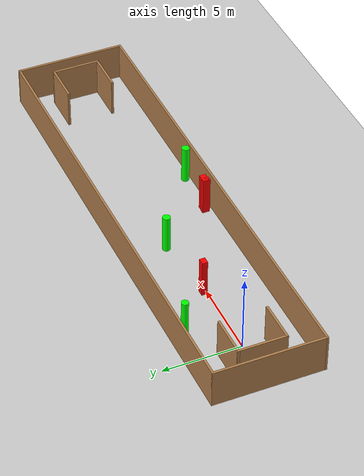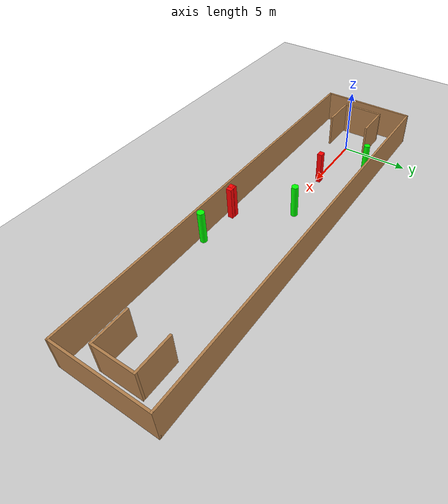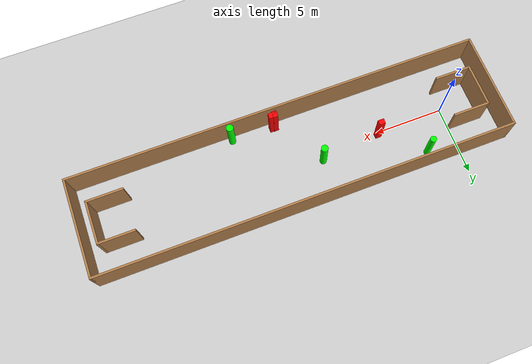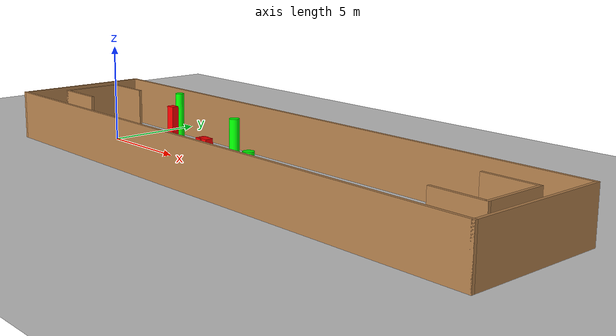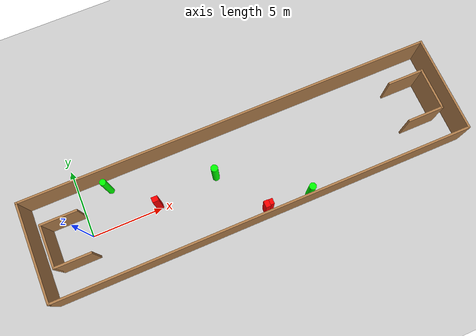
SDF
<sdf version="1.7">
 <world name="default">
  <light name="sun" type="directional">
   <pose>0 0 10 0 -0 0</pose>
   <diffuse>0.8 0.8 0.8 1</diffuse>
   <specular>0.2 0.2 0.2 1</specular>
   <attenuation>
    <range>1000</range>
    <constant>0.9</constant>
    <linear>0.01</linear>
    <quadratic>0.001</quadratic>
   </attenuation>
   <direction>-0.5 0.1 -0.9</direction>
   <spot><inner_angle>0</inner_angle><outer_angle>0</outer_angle><falloff>0</falloff></spot>
  </light>
  <model name="ground_plane">
   <static>1</static>
   <link name="link">
    <collision name="collision">
     <geometry><plane><normal>0 0 1</normal><size>100 100</size></plane></geometry>
     <surface>
      <contact><collide_bitmask>65535</collide_bitmask></contact>
      <friction><ode><mu>100</mu><mu2>50</mu2></ode></friction>
     </surface>
    </collision>
    <visual name="visual">
     <cast_shadows>0</cast_shadows>
     <geometry><plane><normal>0 0 1</normal><size>100 100</size></plane></geometry>
     <material>
      <script><uri>file://media/materials/scripts/gazebo.material</uri><name>Gazebo/Grey</name></script>
     </material>
    </visual>
   </link>
  </model>
  <gravity>0 0 -9.8</gravity>
  <magnetic_field>6e-06 2.3e-05 -4.2e-05</magnetic_field>
  <atmosphere type="adiabatic"/>
  <physics type="ode">
   <max_step_size>0.001</max_step_size>
   <real_time_factor>1</real_time_factor>
   <real_time_update_rate>1000</real_time_update_rate>
  </physics>
  <scene><ambient>0.4 0.4 0.4 1</ambient><background>0.7 0.7 0.7 1</background><shadows>1</shadows></scene>
  <spherical_coordinates>
   <surface_model>EARTH_WGS84</surface_model>
   <latitude_deg>0</latitude_deg>
   <longitude_deg>0</longitude_deg>
   <elevation>0</elevation>
   <heading_deg>0</heading_deg>
  </spherical_coordinates>
  <model name="my_base_walls">
   <link name="Wall_0">
    <collision name="Wall_0_Collision">
     <geometry><box><size>7.15 0.15 2.5</size></box></geometry>
     <pose>0 0 1.25 0 -0 0</pose>
    </collision>
    <visual name="Wall_0_Visual">
     <pose>0 0 1.25 0 -0 0</pose>
     <geometry><box><size>7.15 0.15 2.5</size></box></geometry>
     <material>
      <script><uri>file://media/materials/scripts/gazebo.material</uri><name>Gazebo/Wood</name></script>
      <ambient>1 1 1 1</ambient>
     </material>
     <meta><layer>0</layer></meta>
    </visual>
    <pose>-15 0 0 0 -0 1.5708</pose>
   </link>
   <link name="Wall_10">
    <collision name="Wall_10_Collision">
     <geometry><box><size>2.65 0.15 2.5</size></box></geometry>
     <pose>0 0 1.25 0 -0 0</pose>
    </collision>
    <visual name="Wall_10_Visual">
     <pose>0 0 1.25 0 -0 0</pose>
     <geometry><box><size>2.65 0.15 2.5</size></box></geometry>
     <material>
      <script><uri>file://media/materials/scripts/gazebo.material</uri><name>Gazebo/Wood</name></script>
      <ambient>1 1 1 1</ambient>
     </material>
     <meta><layer>0</layer></meta>
    </visual>
    <pose>-12.75 -1.5 0 0 -0 0</pose>
   </link>
   <link name="Wall_12">
    <collision name="Wall_12_Collision">
     <geometry><box><size>2.65 0.15 2.5</size></box></geometry>
     <pose>0 0 1.25 0 -0 0</pose>
    </collision>
    <visual name="Wall_12_Visual">
     <pose>0 0 1.25 0 -0 0</pose>
     <geometry><box><size>2.65 0.15 2.5</size></box></geometry>
     <material>
      <script><uri>file://media/materials/scripts/gazebo.material</uri><name>Gazebo/Wood</name></script>
      <ambient>1 1 1 1</ambient>
     </material>
     <meta><layer>0</layer></meta>
    </visual>
    <pose>-12.75 1.5 0 0 -0 0</pose>
   </link>
   <link name="Wall_14">
    <collision name="Wall_14_Collision">
     <geometry><box><size>3.15 0.15 2.5</size></box></geometry>
     <pose>0 0 1.25 0 -0 0</pose>
    </collision>
    <visual name="Wall_14_Visual">
     <pose>0 0 1.25 0 -0 0</pose>
     <geometry><box><size>3.15 0.15 2.5</size></box></geometry>
     <material>
      <script><uri>file://media/materials/scripts/gazebo.material</uri><name>Gazebo/Wood</name></script>
      <ambient>1 1 1 1</ambient>
     </material>
     <meta><layer>0</layer></meta>
    </visual>
    <pose>14 0 0 0 -0 -1.5708</pose>
   </link>
   <link name="Wall_15">
    <collision name="Wall_15_Collision">
     <geometry><box><size>2.65 0.15 2.5</size></box></geometry>
     <pose>0 0 1.25 0 -0 0</pose>
    </collision>
    <visual name="Wall_15_Visual">
     <pose>0 0 1.25 0 -0 0</pose>
     <geometry><box><size>2.65 0.15 2.5</size></box></geometry>
     <material>
      <script><uri>file://media/materials/scripts/gazebo.material</uri><name>Gazebo/Wood</name></script>
      <ambient>1 1 1 1</ambient>
     </material>
     <meta><layer>0</layer></meta>
    </visual>
    <pose>12.75 -1.5 0 0 -0 3.14159</pose>
   </link>
   <link name="Wall_17">
    <collision name="Wall_17_Collision">
     <geometry><box><size>2.65 0.15 2.5</size></box></geometry>
     <pose>0 0 1.25 0 -0 0</pose>
    </collision>
    <visual name="Wall_17_Visual">
     <pose>0 0 1.25 0 -0 0</pose>
     <geometry><box><size>2.65 0.15 2.5</size></box></geometry>
     <material>
      <script><uri>file://media/materials/scripts/gazebo.material</uri><name>Gazebo/Wood</name></script>
      <ambient>1 1 1 1</ambient>
     </material>
     <meta><layer>0</layer></meta>
    </visual>
    <pose>12.75 1.5 0 0 -0 3.14159</pose>
   </link>
   <link name="Wall_2">
    <collision name="Wall_2_Collision">
     <geometry><box><size>30.15 0.15 2.5</size></box></geometry>
     <pose>0 0 1.25 0 -0 0</pose>
    </collision>
    <visual name="Wall_2_Visual">
     <pose>0 0 1.25 0 -0 0</pose>
     <geometry><box><size>30.15 0.15 2.5</size></box></geometry>
     <material>
      <script><uri>file://media/materials/scripts/gazebo.material</uri><name>Gazebo/Wood</name></script>
      <ambient>1 1 1 1</ambient>
     </material>
     <meta><layer>0</layer></meta>
    </visual>
    <pose>-0 -3.5 0 0 -0 0</pose>
   </link>
   <link name="Wall_4">
    <collision name="Wall_4_Collision">
     <geometry><box><size>30.15 0.15 2.5</size></box></geometry>
     <pose>0 0 1.25 0 -0 0</pose>
    </collision>
    <visual name="Wall_4_Visual">
     <pose>0 0 1.25 0 -0 0</pose>
     <geometry><box><size>30.15 0.15 2.5</size></box></geometry>
     <material>
      <script><uri>file://media/materials/scripts/gazebo.material</uri><name>Gazebo/Wood</name></script>
      <ambient>1 1 1 1</ambient>
     </material>
     <meta><layer>0</layer></meta>
    </visual>
    <pose>-0 3.5 0 0 -0 0</pose>
   </link>
   <link name="Wall_6">
    <collision name="Wall_6_Collision">
     <geometry><box><size>7.15 0.15 2.5</size></box></geometry>
     <pose>0 0 1.25 0 -0 0</pose>
    </collision>
    <visual name="Wall_6_Visual">
     <pose>0 0 1.25 0 -0 0</pose>
     <geometry><box><size>7.15 0.15 2.5</size></box></geometry>
     <material>
      <script><uri>file://media/materials/scripts/gazebo.material</uri><name>Gazebo/Wood</name></script>
      <ambient>1 1 1 1</ambient>
     </material>
     <meta><layer>0</layer></meta>
    </visual>
    <pose>15 0 0 0 -0 -1.5708</pose>
   </link>
   <link name="Wall_9">
    <collision name="Wall_9_Collision">
     <geometry><box><size>3.15 0.15 2.5</size></box></geometry>
     <pose>0 0 1.25 0 -0 0</pose>
    </collision>
    <visual name="Wall_9_Visual">
     <pose>0 0 1.25 0 -0 0</pose>
     <geometry><box><size>3.15 0.15 2.5</size></box></geometry>
     <material>
      <script><uri>file://media/materials/scripts/gazebo.material</uri><name>Gazebo/Wood</name></script>
      <ambient>1 1 1 1</ambient>
     </material>
     <meta><layer>0</layer></meta>
    </visual>
    <pose>-14 0 0 0 -0 -1.5708</pose>
   </link>
   <static>1</static>
   <pose>11.5 0 0 0 -0 0</pose>
  </model>
  <model name="cylinder1">
   <static>1</static>
   <link name="link">
    <inertial>
     <mass>1</mass>
     <inertia><ixx>0.5</ixx><ixy>0</ixy><ixz>0</ixz><iyy>0.5</iyy><iyz>0</iyz><izz>1</izz></inertia>
    </inertial>
    <collision name="collision">
     <geometry><cylinder><radius>0.22545311920945393</radius><length>2.5</length></cylinder></geometry>
    </collision>
    <visual name="visual">
     <geometry><cylinder><radius>0.22545311920945393</radius><length>2.5</length></cylinder></geometry>
     <material>
      <ambient>0 1 0 1</ambient>
      <diffuse>0 1 0 1</diffuse>
      <specular>0.1 0.1 0.1 1</specular>
      <emissive>0 0 0 0</emissive>
     </material>
    </visual>
   </link>
   <pose>2.205723204349063 2.6143276908042683 1.25 0 0 0</pose>
  </model>
  <model name="cylinder2">
   <static>1</static>
   <link name="link">
    <inertial>
     <mass>1</mass>
     <inertia><ixx>0.5</ixx><ixy>0</ixy><ixz>0</ixz><iyy>0.5</iyy><iyz>0</iyz><izz>1</izz></inertia>
    </inertial>
    <collision name="collision">
     <geometry><cylinder><radius>0.25094059613452896</radius><length>2.5</length></cylinder></geometry>
    </collision>
    <visual name="visual">
     <geometry><cylinder><radius>0.25094059613452896</radius><length>2.5</length></cylinder></geometry>
     <material>
      <ambient>0 1 0 1</ambient>
      <diffuse>0 1 0 1</diffuse>
      <specular>0.1 0.1 0.1 1</specular>
      <emissive>0 0 0 0</emissive>
     </material>
    </visual>
   </link>
   <pose>9.3880855382277 0.6102997024967625 1.25 0 0 0</pose>
  </model>
  <model name="cylinder3">
   <static>1</static>
   <link name="link">
    <inertial>
     <mass>1</mass>
     <inertia><ixx>0.5</ixx><ixy>0</ixy><ixz>0</ixz><iyy>0.5</iyy><iyz>0</iyz><izz>1</izz></inertia>
    </inertial>
    <collision name="collision">
     <geometry><cylinder><radius>0.25122510627193095</radius><length>2.5</length></cylinder></geometry>
    </collision>
    <visual name="visual">
     <geometry><cylinder><radius>0.25122510627193095</radius><length>2.5</length></cylinder></geometry>
     <material>
      <ambient>0 1 0 1</ambient>
      <diffuse>0 1 0 1</diffuse>
      <specular>0.1 0.1 0.1 1</specular>
      <emissive>0 0 0 0</emissive>
     </material>
    </visual>
   </link>
   <pose>14.931494699605965 -3.096119892757287 1.25 0 0 0</pose>
  </model>
  <model name="box1">
   <static>1</static>
   <link name="link">
    <inertial>
     <mass>1</mass>
     <inertia><ixx>0.083</ixx><ixy>0</ixy><ixz>0</ixz><iyy>0.083</iyy><iyz>0</iyz><izz>0.083</izz></inertia>
    </inertial>
    <collision name="collision">
     <geometry><box><size>0.34339166081575107 0.47931884206320313 2.5</size></box></geometry>
    </collision>
    <visual name="visual">
     <geometry><box><size>0.34339166081575107 0.47931884206320313 2.5</size></box></geometry>
     <material>
      <ambient>1 0 0 1</ambient>
      <diffuse>1 0 0 1</diffuse>
      <specular>0.1 0.1 0.1 1</specular>
      <emissive>0 0 0 0</emissive>
     </material>
    </visual>
    <sensor name="my_contact" type="contact">
     <contact><collision>box_collision</collision><topic>__default_topic__</topic></contact>
    </sensor>
   </link>
   <pose>11.680756434246051 -2.982097919761853 1.25 0 0 0</pose>
  </model>
  <model name="box2">
   <static>1</static>
   <link name="link">
    <inertial>
     <mass>1</mass>
     <inertia><ixx>0.083</ixx><ixy>0</ixy><ixz>0</ixz><iyy>0.083</iyy><iyz>0</iyz><izz>0.083</izz></inertia>
    </inertial>
    <collision name="collision">
     <geometry><box><size>0.5516853911637045 0.3966635579236343 2.5</size></box></geometry>
    </collision>
    <visual name="visual">
     <geometry><box><size>0.5516853911637045 0.3966635579236343 2.5</size></box></geometry>
     <material>
      <ambient>1 0 0 1</ambient>
      <diffuse>1 0 0 1</diffuse>
      <specular>0.1 0.1 0.1 1</specular>
      <emissive>0 0 0 0</emissive>
     </material>
    </visual>
    <sensor name="my_contact" type="contact">
     <contact><collision>box_collision</collision><topic>__default_topic__</topic></contact>
    </sensor>
   </link>
   <pose>11.858270218724703 -2.962820236061991 1.25 0 0 0</pose>
  </model>
  <model name="box3">
   <static>1</static>
   <link name="link">
    <inertial>
     <mass>1</mass>
     <inertia><ixx>0.083</ixx><ixy>0</ixy><ixz>0</ixz><iyy>0.083</iyy><iyz>0</iyz><izz>0.083</izz></inertia>
    </inertial>
    <collision name="collision">
     <geometry><box><size>0.4387631398043744 0.36262698466605536 2.5</size></box></geometry>
    </collision>
    <visual name="visual">
     <geometry><box><size>0.4387631398043744 0.36262698466605536 2.5</size></box></geometry>
     <material>
      <ambient>1 0 0 1</ambient>
      <diffuse>1 0 0 1</diffuse>
      <specular>0.1 0.1 0.1 1</specular>
      <emissive>0 0 0 0</emissive>
     </material>
    </visual>
    <sensor name="my_contact" type="contact">
     <contact><collision>box_collision</collision><topic>__default_topic__</topic></contact>
    </sensor>
   </link>
   <pose>4.994572932727902 0.19312768397896196 1.25 0 0 0</pose>
  </model>
 </world>
</sdf>
